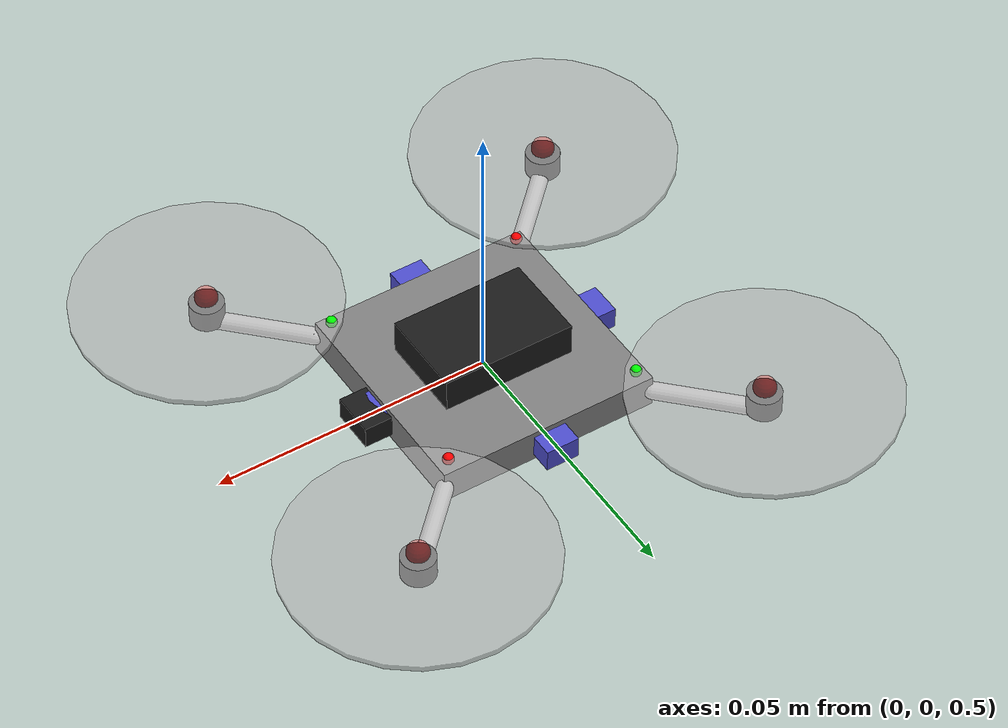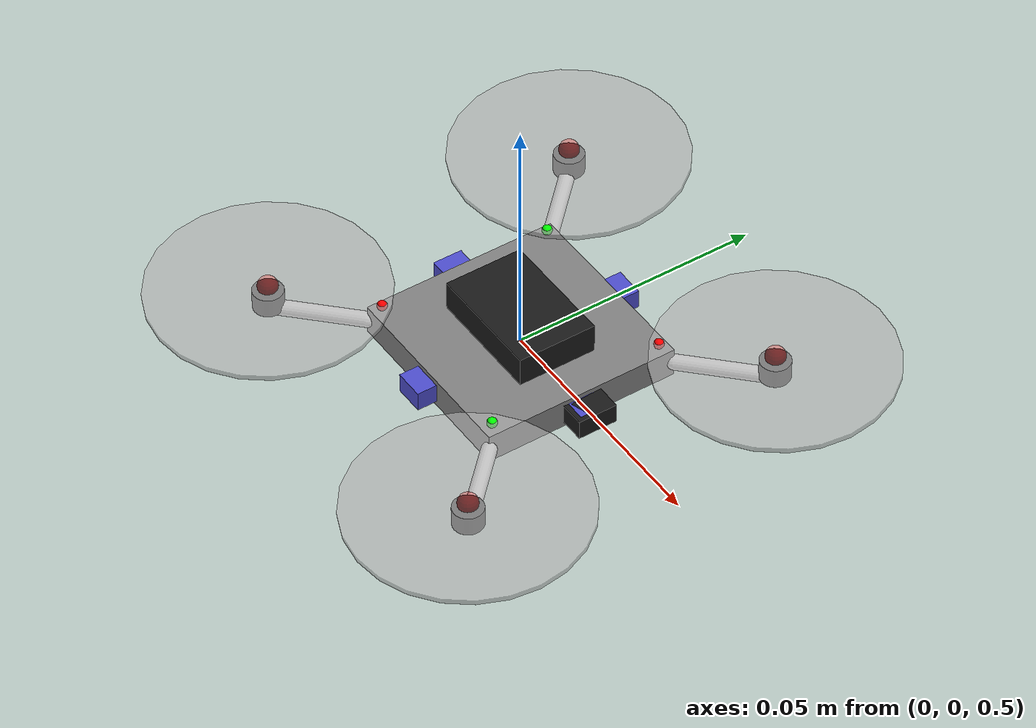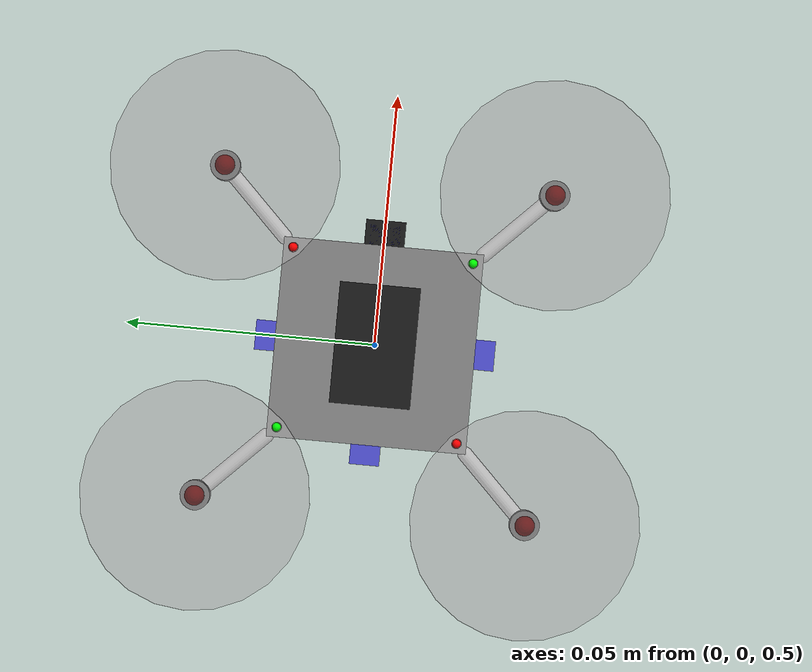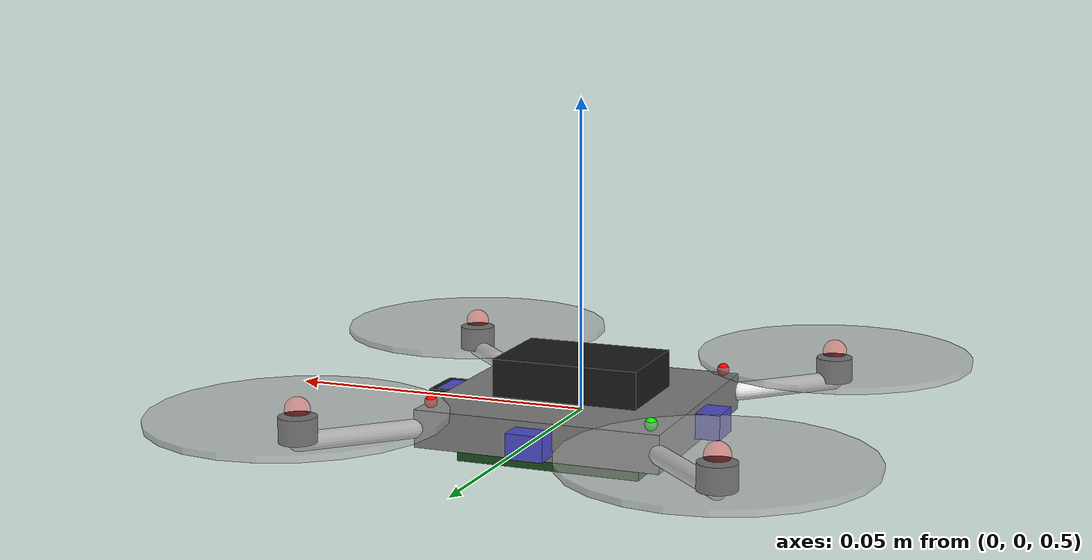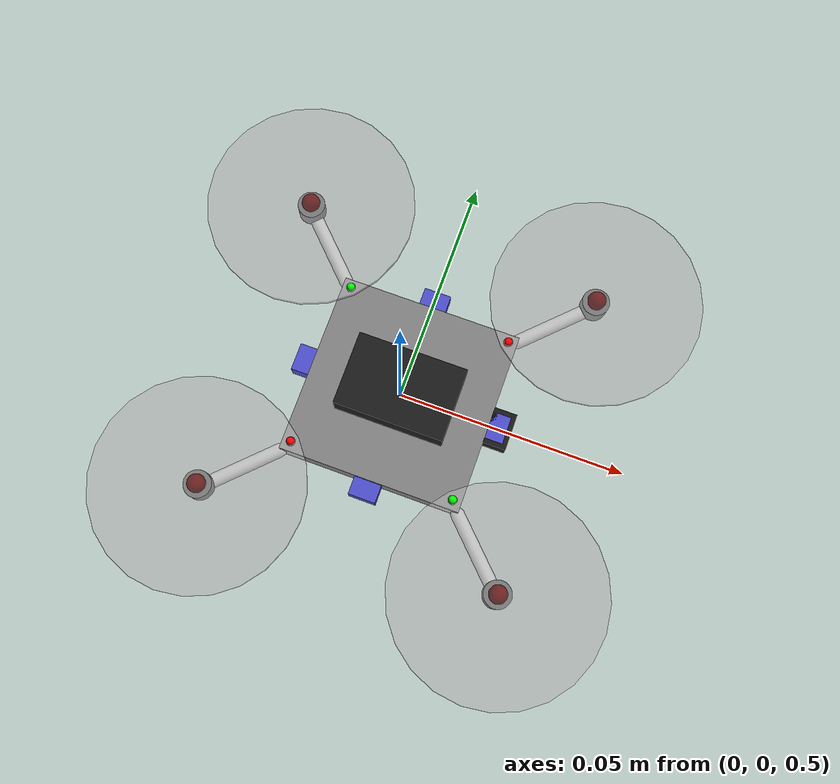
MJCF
<mujoco model="crazyflie_2_1">
  <compiler angle="radian" autolimits="true"/>

  <option timestep="0.001" integrator="implicitfast">
    <flag warmstart="enable"/>
  </option>

  <default>
    <default class="crazyflie">
      <geom rgba="0.9 0.9 0.9 1" material="body_mat"/>
      <joint armature="0.0001" damping="0.001"/>
      <site size="0.002" rgba="1 0 0 0.3"/>
    </default>
    <default class="propeller">
      <geom type="cylinder" size="0.023 0.001" rgba="0.7 0.7 0.7 0.6"/>
      <joint type="hinge" axis="0 0 1" damping="0.0001"/>
    </default>
    <default class="arm">
      <geom type="capsule" size="0.0015" rgba="0.9 0.9 0.9 1"/>
    </default>
    <default class="visual">
      <geom contype="0" conaffinity="0" group="2"/>
    </default>
    <default class="collision">
      <geom group="3"/>
    </default>
  </default>

  <asset>
    <material name="body_mat" specular="0.3" shininess="0.15" rgba="0.9 0.9 0.9 1"/>
    <material name="prop_mat" specular="0.2" shininess="0.1" rgba="0.7 0.7 0.7 0.6"/>
    <material name="motor_mat" specular="0.5" shininess="0.3" rgba="0.2 0.2 0.2 1"/>
    <material name="led_red" emission="1.0" rgba="1.0 0.0 0.0 1"/>
    <material name="led_green" emission="1.0" rgba="0.0 1.0 0.0 1"/>
    <material name="led_blue" emission="1.0" rgba="0.0 0.5 1.0 1"/>
  </asset>

  <worldbody>
    <light directional="true" diffuse=".8 .8 .8" specular=".2 .2 .2" pos="0 0 5" dir="0 0 -1"/>
    <light directional="true" diffuse=".3 .3 .3" specular=".1 .1 .1" pos="5 0 3" dir="-1 0 -0.5"/>

    <body name="crazyflie_2_1" pos="0 0 0.5" childclass="crazyflie">
      <!-- Free joint for 6-DOF movement -->
      <freejoint name="root"/>

      <!-- Central fuselage (PCB body) -->
      <inertial mass="0.022" pos="0 0 0" diaginertia="1.4e-5 1.4e-5 2.2e-5"/>
      <geom name="fuselage" type="box" size="0.02 0.02 0.003" class="visual"/>
      <geom name="fuselage_collision" type="box" size="0.02 0.02 0.003" class="collision"/>

      <!-- Battery on top -->
      <geom name="battery" type="box" pos="0 0 0.005" size="0.012 0.008 0.004" rgba="0.1 0.1 0.1 1" class="visual"/>

      <!-- LED indicators on arms -->
      <geom name="led_fl" type="sphere" pos="0.018 0.018 0.004" size="0.001" material="led_red" class="visual"/>
      <geom name="led_fr" type="sphere" pos="0.018 -0.018 0.004" size="0.001" material="led_green" class="visual"/>
      <geom name="led_rl" type="sphere" pos="-0.018 0.018 0.004" size="0.001" material="led_green" class="visual"/>
      <geom name="led_rr" type="sphere" pos="-0.018 -0.018 0.004" size="0.001" material="led_red" class="visual"/>

      <!-- USB connector -->
      <geom name="usb_connector" type="box" pos="0.022 0 0" size="0.003 0.004 0.002" rgba="0.1 0.1 0.1 1" class="visual"/>

      <!-- Front-left arm -->
      <body name="arm_fl" pos="0.02 0.02 0">
        <geom name="arm_fl_geom" fromto="0 0 0 0.013 0.013 0" class="arm"/>
        <body name="motor_fl" pos="0.013 0.013 0.002">
          <geom name="motor_fl_housing" type="cylinder" size="0.003 0.002" rgba="0.2 0.2 0.2 1" class="visual"/>
          <joint name="motor_fl_joint" class="propeller"/>
          <geom name="prop_fl" type="cylinder" size="0.023 0.0005" pos="0 0 0.002" material="prop_mat" class="visual"/>
          <geom name="prop_fl_collision" type="cylinder" size="0.023 0.0005" pos="0 0 0.002" class="collision"/>
          <site name="thrust_fl" pos="0 0 0.003" size="0.002"/>
        </body>
      </body>

      <!-- Front-right arm -->
      <body name="arm_fr" pos="0.02 -0.02 0">
        <geom name="arm_fr_geom" fromto="0 0 0 0.013 -0.013 0" class="arm"/>
        <body name="motor_fr" pos="0.013 -0.013 0.002">
          <geom name="motor_fr_housing" type="cylinder" size="0.003 0.002" rgba="0.2 0.2 0.2 1" class="visual"/>
          <joint name="motor_fr_joint" class="propeller"/>
          <geom name="prop_fr" type="cylinder" size="0.023 0.0005" pos="0 0 0.002" material="prop_mat" class="visual"/>
          <geom name="prop_fr_collision" type="cylinder" size="0.023 0.0005" pos="0 0 0.002" class="collision"/>
          <site name="thrust_fr" pos="0 0 0.003" size="0.002"/>
        </body>
      </body>

      <!-- Rear-left arm -->
      <body name="arm_rl" pos="-0.02 0.02 0">
        <geom name="arm_rl_geom" fromto="0 0 0 -0.013 0.013 0" class="arm"/>
        <body name="motor_rl" pos="-0.013 0.013 0.002">
          <geom name="motor_rl_housing" type="cylinder" size="0.003 0.002" rgba="0.2 0.2 0.2 1" class="visual"/>
          <joint name="motor_rl_joint" class="propeller"/>
          <geom name="prop_rl" type="cylinder" size="0.023 0.0005" pos="0 0 0.002" material="prop_mat" class="visual"/>
          <geom name="prop_rl_collision" type="cylinder" size="0.023 0.0005" pos="0 0 0.002" class="collision"/>
          <site name="thrust_rl" pos="0 0 0.003" size="0.002"/>
        </body>
      </body>

      <!-- Rear-right arm -->
      <body name="arm_rr" pos="-0.02 -0.02 0">
        <geom name="arm_rr_geom" fromto="0 0 0 -0.013 -0.013 0" class="arm"/>
        <body name="motor_rr" pos="-0.013 -0.013 0.002">
          <geom name="motor_rr_housing" type="cylinder" size="0.003 0.002" rgba="0.2 0.2 0.2 1" class="visual"/>
          <joint name="motor_rr_joint" class="propeller"/>
          <geom name="prop_rr" type="cylinder" size="0.023 0.0005" pos="0 0 0.002" material="prop_mat" class="visual"/>
          <geom name="prop_rr_collision" type="cylinder" size="0.023 0.0005" pos="0 0 0.002" class="collision"/>
          <site name="thrust_rr" pos="0 0 0.003" size="0.002"/>
        </body>
      </body>

      <!-- Flow deck (bottom sensor) -->
      <geom name="flow_deck" type="box" pos="0 0 -0.005" size="0.015 0.015 0.001" rgba="0.1 0.3 0.1 1" class="visual"/>

      <!-- Multi-ranger sensors (simplified as small boxes) -->
      <geom name="ranger_front" type="box" pos="0.022 0 0" size="0.002 0.003 0.002" rgba="0.3 0.3 0.8 1" class="visual"/>
      <geom name="ranger_back" type="box" pos="-0.022 0 0" size="0.002 0.003 0.002" rgba="0.3 0.3 0.8 1" class="visual"/>
      <geom name="ranger_left" type="box" pos="0 0.022 0" size="0.003 0.002 0.002" rgba="0.3 0.3 0.8 1" class="visual"/>
      <geom name="ranger_right" type="box" pos="0 -0.022 0" size="0.003 0.002 0.002" rgba="0.3 0.3 0.8 1" class="visual"/>

      <!-- IMU site -->
      <site name="imu" pos="0 0 0" size="0.001" rgba="1 0 0 0.5"/>
    </body>
  </worldbody>

  <actuator>
    <!-- Motor actuators: thrust control -->
    <motor name="motor_fl" joint="motor_fl_joint" gear="0 0 1 0 0 0" ctrllimited="true" ctrlrange="0 0.15"/>
    <motor name="motor_fr" joint="motor_fr_joint" gear="0 0 1 0 0 0" ctrllimited="true" ctrlrange="0 0.15"/>
    <motor name="motor_rl" joint="motor_rl_joint" gear="0 0 1 0 0 0" ctrllimited="true" ctrlrange="0 0.15"/>
    <motor name="motor_rr" joint="motor_rr_joint" gear="0 0 1 0 0 0" ctrllimited="true" ctrlrange="0 0.15"/>
  </actuator>

  <sensor>
    <!-- IMU sensors -->
    <accelerometer name="imu_accel" site="imu"/>
    <gyro name="imu_gyro" site="imu"/>
    <framequat name="imu_quat" objtype="site" objname="imu"/>

    <!-- Motor velocity sensors -->
    <jointvel name="motor_fl_vel" joint="motor_fl_joint"/>
    <jointvel name="motor_fr_vel" joint="motor_fr_joint"/>
    <jointvel name="motor_rl_vel" joint="motor_rl_joint"/>
    <jointvel name="motor_rr_vel" joint="motor_rr_joint"/>
  </sensor>

  <keyframe>
    <key name="hover" qpos="0 0 0.5 1 0 0 0 0 0 0 0" ctrl="0.0375 0.0375 0.0375 0.0375"/>
  </keyframe>
</mujoco>
